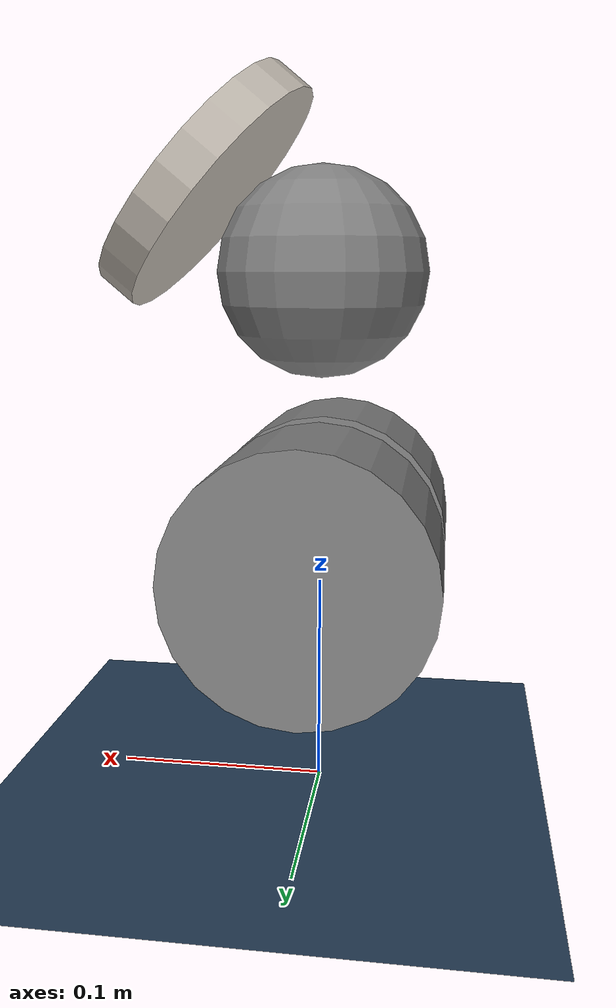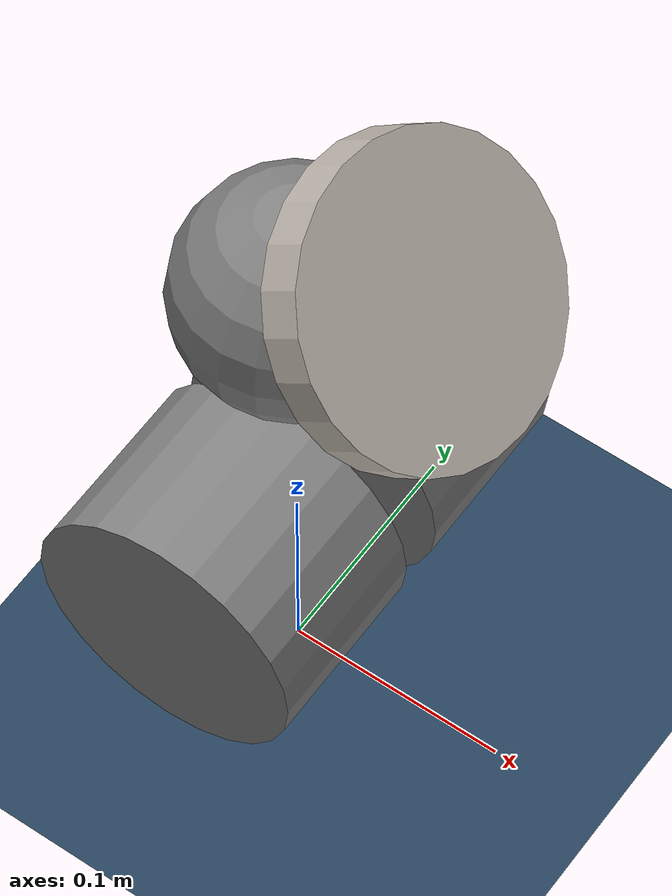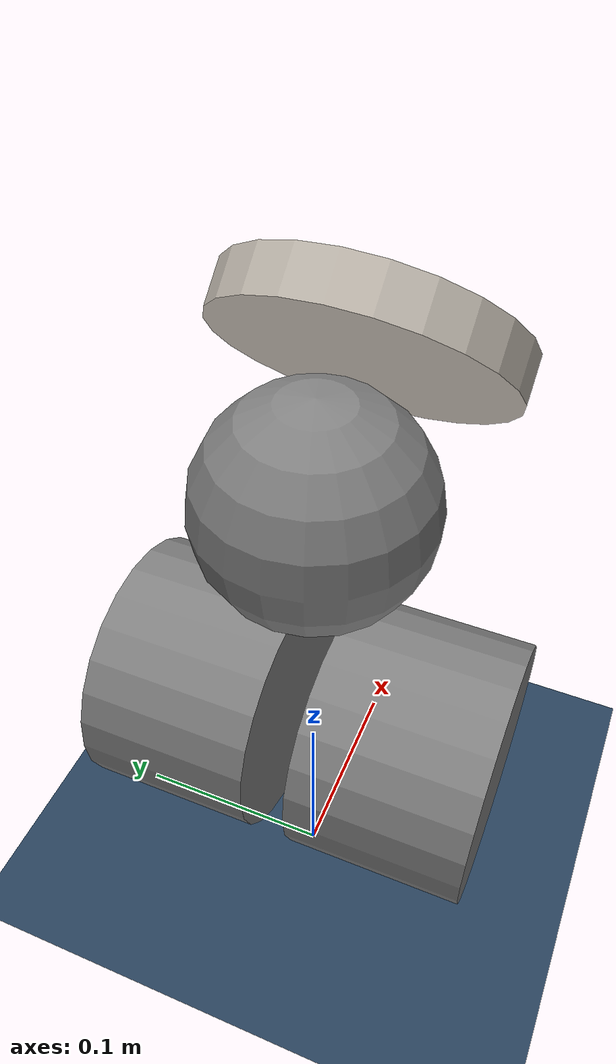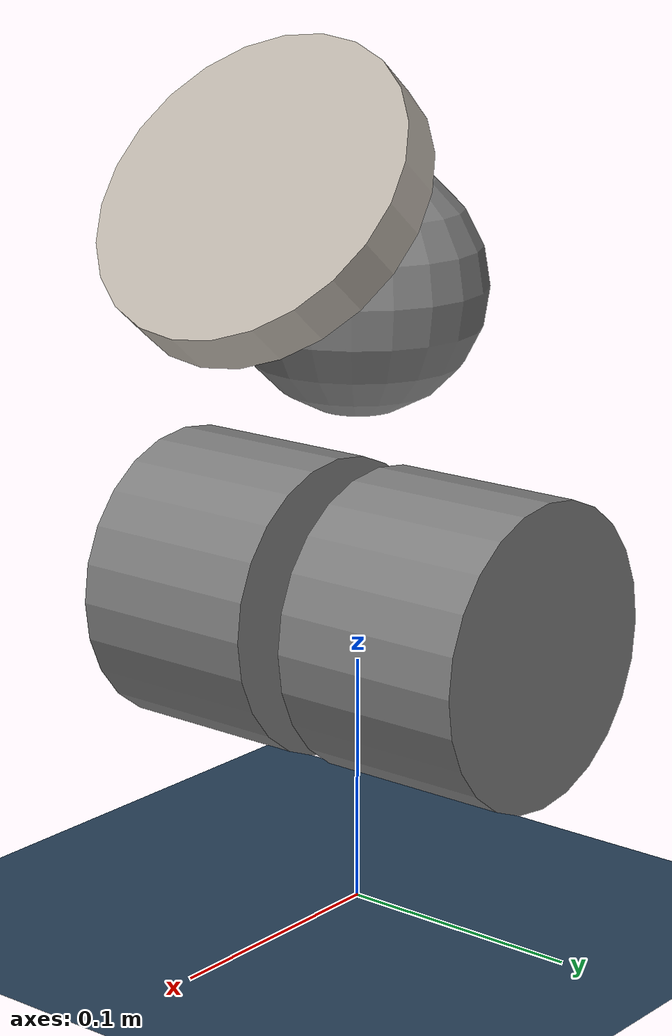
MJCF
<mujoco model="robot scene">

  <include file="robot.xml" />

  <statistic center="0 0 0.2" extent="0.6" />

  <visual>
    <headlight diffuse="0.6 0.6 0.6" ambient="0.3 0.3 0.3" specular="0 0 0" />
    <rgba haze="0.15 0.25 0.35 1" />
    <global azimuth="160" elevation="-20" />
  </visual>

  <asset>
    <texture type="skybox" builtin="gradient" rgb1="0.6 0.6 0.6" rgb2="0 0 0" width="512"
      height="512" />
    <texture type="2d" name="groundplane" builtin="checker" mark="edge" rgb1="0.2 0.3 0.4"
      rgb2="0.1 0.2 0.3"
      markrgb="0.8 0.8 0.8" width="300" height="300" />
    <material name="groundplane" texture="groundplane" texuniform="true" texrepeat="5 5"
      reflectance="0.2" />
  </asset>

  <worldbody>
    <geom name="floor" size="0 0 0.05" type="plane" material="groundplane" friction="0"/>
    <light directional="true" diffuse=".8 .8 .8" specular=".2 .2 .2" pos="0 0 5" dir="0 0 -1" />
  </worldbody>

</mujoco>

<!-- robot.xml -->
<mujoco>
    <compiler coordinate="local" angle="radian" meshdir="meshes" strippath="false" />
    <option timestep="0.008" iterations="40" solver="CG" tolerance="1e-10" />
    <default>
        <default class="wheel">
            <joint axis="0 0 -1" damping=".3" />
            <motor ctrlrange="-100 100" gear="1" forcerange="-100 100" />
        </default>
    </default>
    <visual>
        <rgba haze=".3 .3 .3 1" />
    </visual>

    <asset>
        <texture type="2d" name="edie8_face" file="meshes/visual/edie8_face.png" gridsize="1 1" />
        <material name="edie8_face" texture="edie8_face" texrepeat="1 1" texuniform="false" />
    </asset>

    <worldbody>

        <body name="body" pos="0 0 0.2">
            <body name="main_body" pos="0 0 0.05">
                <geom type="sphere" size="0.05" mass="0.0001" />
                <site name="imu" size="0.01" pos="0 0 0.0" />
            </body>

            <freejoint />
            <body name="l_leg" pos="0 0.045 -0.02" euler="-3.141592 0 0">
                <body name="l_wheel" pos="0 -0.005 0.06" euler="1.570796 0 0">
                    <geom type="cylinder" size="0.06 0.04" mass="5.0" />
                    <joint name="joint_left_wheel" class="wheel" />
                </body>
            </body>
            <body
                name="r_leg" pos="0 -0.045 -0.02" euler="-3.141592 0 3.141592">
                <body name="r_wheel" pos="0 -0.005 0.06" euler="-1.570796 0 0">
                    <geom type="cylinder" size="0.06 0.04" mass="5.0" />
                    <joint name="joint_right_wheel" class="wheel" />
                </body>
            </body>
            <body
                name="face" pos="0.055 0 0.09" euler="0.0 0.872665 0">
                <geom type="cylinder" size="0.065 0.01" mass="0" material="edie8_face" />
            </body>
        </body>

    </worldbody>

    <contact>
        <exclude body1="l_wheel" body2="l_leg" />
        <exclude body1="r_wheel" body2="r_leg" />
    </contact>

    <tendon>
        <fixed name="forward">
            <joint joint="joint_left_wheel" coef=".5" />
            <joint joint="joint_right_wheel" coef=".5" />
        </fixed>
        <fixed name="turn">
            <joint joint="joint_left_wheel" coef="-.5" />
            <joint joint="joint_right_wheel" coef=".5" />
        </fixed>
    </tendon>

    <actuator>
        <motor name="forward" tendon="forward" class="wheel" />
        <motor name="turn" tendon="turn" class="wheel" />
    </actuator>

    <sensor>
        <gyro name="angular_velocity" site="imu" noise="5e-4" cutoff="34.9" />
        <accelerometer name="linear_acceleration" site="imu" noise="1e-2" cutoff="157" />
        <jointvel name="jointvel_l" joint="joint_left_wheel" />
        <jointvel name="jointvel_r" joint="joint_right_wheel" />
    </sensor>

    <sensor>
        <framepos name="framepos_body_main" objtype="body" objname="main_body" />
        <framequat name="framexaxis_body_main" objtype="body" objname="main_body" />
        <framexaxis name="framexaxis" objtype="body" objname="main_body" />
    </sensor>
</mujoco>
